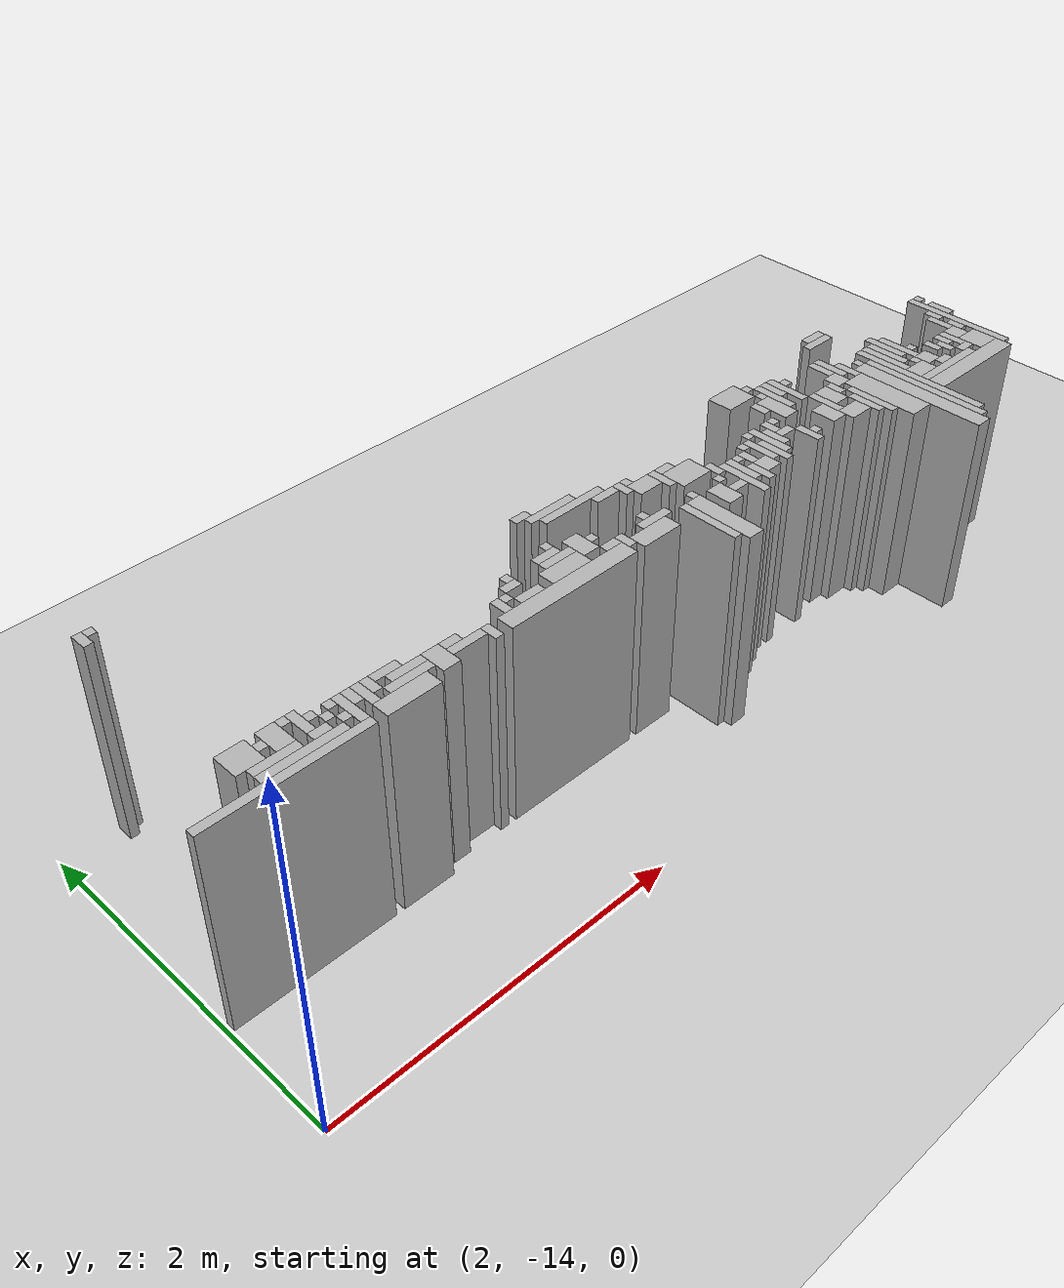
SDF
<sdf version="1.6">
 <world name="d10_floor">
  <include><uri>model://sun</uri></include>
  <include><uri>model://ground_plane</uri></include>
  <model name="d10_walls">
   <static>true</static>
   <link name="w619">
    <pose>6.625 -13.395 0.60 0 0 0</pose>
    <collision name="c"><geometry><box><size>0.100 0.800 1.20</size></box></geometry></collision>
    <visual name="v">
     <geometry><box><size>0.100 0.800 1.20</size></box></geometry>
     <material><ambient>0.6 0.6 0.6 1</ambient><diffuse>0.7 0.7 0.7 1</diffuse></material>
    </visual>
   </link>
   <link name="w627">
    <pose>6.700 -13.370 0.60 0 0 0</pose>
    <collision name="c"><geometry><box><size>0.050 0.750 1.20</size></box></geometry></collision>
    <visual name="v">
     <geometry><box><size>0.050 0.750 1.20</size></box></geometry>
     <material><ambient>0.6 0.6 0.6 1</ambient><diffuse>0.7 0.7 0.7 1</diffuse></material>
    </visual>
   </link>
   <link name="w638">
    <pose>6.750 -13.295 0.60 0 0 0</pose>
    <collision name="c"><geometry><box><size>0.050 0.800 1.20</size></box></geometry></collision>
    <visual name="v">
     <geometry><box><size>0.050 0.800 1.20</size></box></geometry>
     <material><ambient>0.6 0.6 0.6 1</ambient><diffuse>0.7 0.7 0.7 1</diffuse></material>
    </visual>
   </link>
   <link name="w656">
    <pose>5.025 -13.395 0.60 0 0 0</pose>
    <collision name="c"><geometry><box><size>0.100 0.400 1.20</size></box></geometry></collision>
    <visual name="v">
     <geometry><box><size>0.100 0.400 1.20</size></box></geometry>
     <material><ambient>0.6 0.6 0.6 1</ambient><diffuse>0.7 0.7 0.7 1</diffuse></material>
    </visual>
   </link>
   <link name="w661">
    <pose>4.950 -13.370 0.60 0 0 0</pose>
    <collision name="c"><geometry><box><size>0.050 0.350 1.20</size></box></geometry></collision>
    <visual name="v">
     <geometry><box><size>0.050 0.350 1.20</size></box></geometry>
     <material><ambient>0.6 0.6 0.6 1</ambient><diffuse>0.7 0.7 0.7 1</diffuse></material>
    </visual>
   </link>
   <link name="w666">
    <pose>6.500 -13.270 0.60 0 0 0</pose>
    <collision name="c"><geometry><box><size>0.150 0.450 1.20</size></box></geometry></collision>
    <visual name="v">
     <geometry><box><size>0.150 0.450 1.20</size></box></geometry>
     <material><ambient>0.6 0.6 0.6 1</ambient><diffuse>0.7 0.7 0.7 1</diffuse></material>
    </visual>
   </link>
   <link name="w676">
    <pose>7.100 -13.395 0.60 0 0 0</pose>
    <collision name="c"><geometry><box><size>0.650 0.100 1.20</size></box></geometry></collision>
    <visual name="v">
     <geometry><box><size>0.650 0.100 1.20</size></box></geometry>
     <material><ambient>0.6 0.6 0.6 1</ambient><diffuse>0.7 0.7 0.7 1</diffuse></material>
    </visual>
   </link>
   <link name="w683">
    <pose>5.350 -13.245 0.60 0 0 0</pose>
    <collision name="c"><geometry><box><size>0.050 0.300 1.20</size></box></geometry></collision>
    <visual name="v">
     <geometry><box><size>0.050 0.300 1.20</size></box></geometry>
     <material><ambient>0.6 0.6 0.6 1</ambient><diffuse>0.7 0.7 0.7 1</diffuse></material>
    </visual>
   </link>
   <link name="w684">
    <pose>6.400 -13.245 0.60 0 0 0</pose>
    <collision name="c"><geometry><box><size>0.050 0.300 1.20</size></box></geometry></collision>
    <visual name="v">
     <geometry><box><size>0.050 0.300 1.20</size></box></geometry>
     <material><ambient>0.6 0.6 0.6 1</ambient><diffuse>0.7 0.7 0.7 1</diffuse></material>
    </visual>
   </link>
   <link name="w685">
    <pose>7.450 -13.070 0.60 0 0 0</pose>
    <collision name="c"><geometry><box><size>0.050 0.650 1.20</size></box></geometry></collision>
    <visual name="v">
     <geometry><box><size>0.050 0.650 1.20</size></box></geometry>
     <material><ambient>0.6 0.6 0.6 1</ambient><diffuse>0.7 0.7 0.7 1</diffuse></material>
    </visual>
   </link>
   <link name="w691">
    <pose>2.475 -13.320 0.60 0 0 0</pose>
    <collision name="c"><geometry><box><size>0.900 0.050 1.20</size></box></geometry></collision>
    <visual name="v">
     <geometry><box><size>0.900 0.050 1.20</size></box></geometry>
     <material><ambient>0.6 0.6 0.6 1</ambient><diffuse>0.7 0.7 0.7 1</diffuse></material>
    </visual>
   </link>
   <link name="w692">
    <pose>3.125 -13.295 0.60 0 0 0</pose>
    <collision name="c"><geometry><box><size>0.300 0.100 1.20</size></box></geometry></collision>
    <visual name="v">
     <geometry><box><size>0.300 0.100 1.20</size></box></geometry>
     <material><ambient>0.6 0.6 0.6 1</ambient><diffuse>0.7 0.7 0.7 1</diffuse></material>
    </visual>
   </link>
   <link name="w693">
    <pose>5.175 -13.270 0.60 0 0 0</pose>
    <collision name="c"><geometry><box><size>0.100 0.150 1.20</size></box></geometry></collision>
    <visual name="v">
     <geometry><box><size>0.100 0.150 1.20</size></box></geometry>
     <material><ambient>0.6 0.6 0.6 1</ambient><diffuse>0.7 0.7 0.7 1</diffuse></material>
    </visual>
   </link>
   <link name="w694">
    <pose>5.450 -13.270 0.60 0 0 0</pose>
    <collision name="c"><geometry><box><size>0.050 0.150 1.20</size></box></geometry></collision>
    <visual name="v">
     <geometry><box><size>0.050 0.150 1.20</size></box></geometry>
     <material><ambient>0.6 0.6 0.6 1</ambient><diffuse>0.7 0.7 0.7 1</diffuse></material>
    </visual>
   </link>
   <link name="w695">
    <pose>6.350 -13.245 0.60 0 0 0</pose>
    <collision name="c"><geometry><box><size>0.050 0.200 1.20</size></box></geometry></collision>
    <visual name="v">
     <geometry><box><size>0.050 0.200 1.20</size></box></geometry>
     <material><ambient>0.6 0.6 0.6 1</ambient><diffuse>0.7 0.7 0.7 1</diffuse></material>
    </visual>
   </link>
   <link name="w696">
    <pose>7.000 -13.320 0.60 0 0 0</pose>
    <collision name="c"><geometry><box><size>0.450 0.050 1.20</size></box></geometry></collision>
    <visual name="v">
     <geometry><box><size>0.450 0.050 1.20</size></box></geometry>
     <material><ambient>0.6 0.6 0.6 1</ambient><diffuse>0.7 0.7 0.7 1</diffuse></material>
    </visual>
   </link>
   <link name="w697">
    <pose>7.350 -13.270 0.60 0 0 0</pose>
    <collision name="c"><geometry><box><size>0.150 0.150 1.20</size></box></geometry></collision>
    <visual name="v">
     <geometry><box><size>0.150 0.150 1.20</size></box></geometry>
     <material><ambient>0.6 0.6 0.6 1</ambient><diffuse>0.7 0.7 0.7 1</diffuse></material>
    </visual>
   </link>
   <link name="w706">
    <pose>2.600 -13.270 0.60 0 0 0</pose>
    <collision name="c"><geometry><box><size>0.450 0.050 1.20</size></box></geometry></collision>
    <visual name="v">
     <geometry><box><size>0.450 0.050 1.20</size></box></geometry>
     <material><ambient>0.6 0.6 0.6 1</ambient><diffuse>0.7 0.7 0.7 1</diffuse></material>
    </visual>
   </link>
   <link name="w707">
    <pose>2.900 -13.195 0.60 0 0 0</pose>
    <collision name="c"><geometry><box><size>0.050 0.200 1.20</size></box></geometry></collision>
    <visual name="v">
     <geometry><box><size>0.050 0.200 1.20</size></box></geometry>
     <material><ambient>0.6 0.6 0.6 1</ambient><diffuse>0.7 0.7 0.7 1</diffuse></material>
    </visual>
   </link>
   <link name="w708">
    <pose>3.375 -13.220 0.60 0 0 0</pose>
    <collision name="c"><geometry><box><size>0.100 0.150 1.20</size></box></geometry></collision>
    <visual name="v">
     <geometry><box><size>0.100 0.150 1.20</size></box></geometry>
     <material><ambient>0.6 0.6 0.6 1</ambient><diffuse>0.7 0.7 0.7 1</diffuse></material>
    </visual>
   </link>
   <link name="w709">
    <pose>3.650 -13.245 0.60 0 0 0</pose>
    <collision name="c"><geometry><box><size>0.050 0.100 1.20</size></box></geometry></collision>
    <visual name="v">
     <geometry><box><size>0.050 0.100 1.20</size></box></geometry>
     <material><ambient>0.6 0.6 0.6 1</ambient><diffuse>0.7 0.7 0.7 1</diffuse></material>
    </visual>
   </link>
   <link name="w710">
    <pose>4.125 -13.245 0.60 0 0 0</pose>
    <collision name="c"><geometry><box><size>0.800 0.100 1.20</size></box></geometry></collision>
    <visual name="v">
     <geometry><box><size>0.800 0.100 1.20</size></box></geometry>
     <material><ambient>0.6 0.6 0.6 1</ambient><diffuse>0.7 0.7 0.7 1</diffuse></material>
    </visual>
   </link>
   <link name="w711">
    <pose>4.700 -13.245 0.60 0 0 0</pose>
    <collision name="c"><geometry><box><size>0.250 0.100 1.20</size></box></geometry></collision>
    <visual name="v">
     <geometry><box><size>0.250 0.100 1.20</size></box></geometry>
     <material><ambient>0.6 0.6 0.6 1</ambient><diffuse>0.7 0.7 0.7 1</diffuse></material>
    </visual>
   </link>
   <link name="w712">
    <pose>5.275 -13.270 0.60 0 0 0</pose>
    <collision name="c"><geometry><box><size>0.100 0.050 1.20</size></box></geometry></collision>
    <visual name="v">
     <geometry><box><size>0.100 0.050 1.20</size></box></geometry>
     <material><ambient>0.6 0.6 0.6 1</ambient><diffuse>0.7 0.7 0.7 1</diffuse></material>
    </visual>
   </link>
   <link name="w713">
    <pose>5.400 -13.195 0.60 0 0 0</pose>
    <collision name="c"><geometry><box><size>0.050 0.200 1.20</size></box></geometry></collision>
    <visual name="v">
     <geometry><box><size>0.050 0.200 1.20</size></box></geometry>
     <material><ambient>0.6 0.6 0.6 1</ambient><diffuse>0.7 0.7 0.7 1</diffuse></material>
    </visual>
   </link>
   <link name="w714">
    <pose>5.525 -13.245 0.60 0 0 0</pose>
    <collision name="c"><geometry><box><size>0.100 0.100 1.20</size></box></geometry></collision>
    <visual name="v">
     <geometry><box><size>0.100 0.100 1.20</size></box></geometry>
     <material><ambient>0.6 0.6 0.6 1</ambient><diffuse>0.7 0.7 0.7 1</diffuse></material>
    </visual>
   </link>
   <link name="w715">
    <pose>5.650 -13.195 0.60 0 0 0</pose>
    <collision name="c"><geometry><box><size>0.050 0.200 1.20</size></box></geometry></collision>
    <visual name="v">
     <geometry><box><size>0.050 0.200 1.20</size></box></geometry>
     <material><ambient>0.6 0.6 0.6 1</ambient><diffuse>0.7 0.7 0.7 1</diffuse></material>
    </visual>
   </link>
   <link name="w716">
    <pose>5.900 -13.220 0.60 0 0 0</pose>
    <collision name="c"><geometry><box><size>0.050 0.150 1.20</size></box></geometry></collision>
    <visual name="v">
     <geometry><box><size>0.050 0.150 1.20</size></box></geometry>
     <material><ambient>0.6 0.6 0.6 1</ambient><diffuse>0.7 0.7 0.7 1</diffuse></material>
    </visual>
   </link>
   <link name="w717">
    <pose>6.250 -13.245 0.60 0 0 0</pose>
    <collision name="c"><geometry><box><size>0.150 0.100 1.20</size></box></geometry></collision>
    <visual name="v">
     <geometry><box><size>0.150 0.100 1.20</size></box></geometry>
     <material><ambient>0.6 0.6 0.6 1</ambient><diffuse>0.7 0.7 0.7 1</diffuse></material>
    </visual>
   </link>
   <link name="w718">
    <pose>6.850 -13.245 0.60 0 0 0</pose>
    <collision name="c"><geometry><box><size>0.150 0.100 1.20</size></box></geometry></collision>
    <visual name="v">
     <geometry><box><size>0.150 0.100 1.20</size></box></geometry>
     <material><ambient>0.6 0.6 0.6 1</ambient><diffuse>0.7 0.7 0.7 1</diffuse></material>
    </visual>
   </link>
   <link name="w719">
    <pose>7.025 -13.270 0.60 0 0 0</pose>
    <collision name="c"><geometry><box><size>0.100 0.050 1.20</size></box></geometry></collision>
    <visual name="v">
     <geometry><box><size>0.100 0.050 1.20</size></box></geometry>
     <material><ambient>0.6 0.6 0.6 1</ambient><diffuse>0.7 0.7 0.7 1</diffuse></material>
    </visual>
   </link>
   <link name="w720">
    <pose>7.225 -13.270 0.60 0 0 0</pose>
    <collision name="c"><geometry><box><size>0.100 0.050 1.20</size></box></geometry></collision>
    <visual name="v">
     <geometry><box><size>0.100 0.050 1.20</size></box></geometry>
     <material><ambient>0.6 0.6 0.6 1</ambient><diffuse>0.7 0.7 0.7 1</diffuse></material>
    </visual>
   </link>
   <link name="w729">
    <pose>2.500 -13.220 0.60 0 0 0</pose>
    <collision name="c"><geometry><box><size>0.250 0.050 1.20</size></box></geometry></collision>
    <visual name="v">
     <geometry><box><size>0.250 0.050 1.20</size></box></geometry>
     <material><ambient>0.6 0.6 0.6 1</ambient><diffuse>0.7 0.7 0.7 1</diffuse></material>
    </visual>
   </link>
   <link name="w730">
    <pose>2.725 -13.220 0.60 0 0 0</pose>
    <collision name="c"><geometry><box><size>0.100 0.050 1.20</size></box></geometry></collision>
    <visual name="v">
     <geometry><box><size>0.100 0.050 1.20</size></box></geometry>
     <material><ambient>0.6 0.6 0.6 1</ambient><diffuse>0.7 0.7 0.7 1</diffuse></material>
    </visual>
   </link>
   <link name="w731">
    <pose>2.850 -13.220 0.60 0 0 0</pose>
    <collision name="c"><geometry><box><size>0.050 0.050 1.20</size></box></geometry></collision>
    <visual name="v">
     <geometry><box><size>0.050 0.050 1.20</size></box></geometry>
     <material><ambient>0.6 0.6 0.6 1</ambient><diffuse>0.7 0.7 0.7 1</diffuse></material>
    </visual>
   </link>
   <link name="w732">
    <pose>3.000 -13.170 0.60 0 0 0</pose>
    <collision name="c"><geometry><box><size>0.050 0.150 1.20</size></box></geometry></collision>
    <visual name="v">
     <geometry><box><size>0.050 0.150 1.20</size></box></geometry>
     <material><ambient>0.6 0.6 0.6 1</ambient><diffuse>0.7 0.7 0.7 1</diffuse></material>
    </visual>
   </link>
   <link name="w733">
    <pose>3.200 -13.220 0.60 0 0 0</pose>
    <collision name="c"><geometry><box><size>0.250 0.050 1.20</size></box></geometry></collision>
    <visual name="v">
     <geometry><box><size>0.250 0.050 1.20</size></box></geometry>
     <material><ambient>0.6 0.6 0.6 1</ambient><diffuse>0.7 0.7 0.7 1</diffuse></material>
    </visual>
   </link>
   <link name="w734">
    <pose>3.525 -13.220 0.60 0 0 0</pose>
    <collision name="c"><geometry><box><size>0.200 0.050 1.20</size></box></geometry></collision>
    <visual name="v">
     <geometry><box><size>0.200 0.050 1.20</size></box></geometry>
     <material><ambient>0.6 0.6 0.6 1</ambient><diffuse>0.7 0.7 0.7 1</diffuse></material>
    </visual>
   </link>
   <link name="w735">
    <pose>4.550 -13.195 0.60 0 0 0</pose>
    <collision name="c"><geometry><box><size>0.050 0.100 1.20</size></box></geometry></collision>
    <visual name="v">
     <geometry><box><size>0.050 0.100 1.20</size></box></geometry>
     <material><ambient>0.6 0.6 0.6 1</ambient><diffuse>0.7 0.7 0.7 1</diffuse></material>
    </visual>
   </link>
   <link name="w736">
    <pose>5.600 -13.145 0.60 0 0 0</pose>
    <collision name="c"><geometry><box><size>0.050 0.200 1.20</size></box></geometry></collision>
    <visual name="v">
     <geometry><box><size>0.050 0.200 1.20</size></box></geometry>
     <material><ambient>0.6 0.6 0.6 1</ambient><diffuse>0.7 0.7 0.7 1</diffuse></material>
    </visual>
   </link>
   <link name="w737">
    <pose>5.700 -13.120 0.60 0 0 0</pose>
    <collision name="c"><geometry><box><size>0.050 0.250 1.20</size></box></geometry></collision>
    <visual name="v">
     <geometry><box><size>0.050 0.250 1.20</size></box></geometry>
     <material><ambient>0.6 0.6 0.6 1</ambient><diffuse>0.7 0.7 0.7 1</diffuse></material>
    </visual>
   </link>
   <link name="w738">
    <pose>5.950 -13.220 0.60 0 0 0</pose>
    <collision name="c"><geometry><box><size>0.050 0.050 1.20</size></box></geometry></collision>
    <visual name="v">
     <geometry><box><size>0.050 0.050 1.20</size></box></geometry>
     <material><ambient>0.6 0.6 0.6 1</ambient><diffuse>0.7 0.7 0.7 1</diffuse></material>
    </visual>
   </link>
   <link name="w739">
    <pose>6.125 -13.170 0.60 0 0 0</pose>
    <collision name="c"><geometry><box><size>0.100 0.150 1.20</size></box></geometry></collision>
    <visual name="v">
     <geometry><box><size>0.100 0.150 1.20</size></box></geometry>
     <material><ambient>0.6 0.6 0.6 1</ambient><diffuse>0.7 0.7 0.7 1</diffuse></material>
    </visual>
   </link>
   <link name="w740">
    <pose>6.975 -13.195 0.60 0 0 0</pose>
    <collision name="c"><geometry><box><size>0.100 0.100 1.20</size></box></geometry></collision>
    <visual name="v">
     <geometry><box><size>0.100 0.100 1.20</size></box></geometry>
     <material><ambient>0.6 0.6 0.6 1</ambient><diffuse>0.7 0.7 0.7 1</diffuse></material>
    </visual>
   </link>
   <link name="w741">
    <pose>7.150 -13.195 0.60 0 0 0</pose>
    <collision name="c"><geometry><box><size>0.050 0.100 1.20</size></box></geometry></collision>
    <visual name="v">
     <geometry><box><size>0.050 0.100 1.20</size></box></geometry>
     <material><ambient>0.6 0.6 0.6 1</ambient><diffuse>0.7 0.7 0.7 1</diffuse></material>
    </visual>
   </link>
   <link name="w742">
    <pose>7.250 -13.170 0.60 0 0 0</pose>
    <collision name="c"><geometry><box><size>0.050 0.150 1.20</size></box></geometry></collision>
    <visual name="v">
     <geometry><box><size>0.050 0.150 1.20</size></box></geometry>
     <material><ambient>0.6 0.6 0.6 1</ambient><diffuse>0.7 0.7 0.7 1</diffuse></material>
    </visual>
   </link>
   <link name="w761">
    <pose>2.400 -13.120 0.60 0 0 0</pose>
    <collision name="c"><geometry><box><size>0.150 0.150 1.20</size></box></geometry></collision>
    <visual name="v">
     <geometry><box><size>0.150 0.150 1.20</size></box></geometry>
     <material><ambient>0.6 0.6 0.6 1</ambient><diffuse>0.7 0.7 0.7 1</diffuse></material>
    </visual>
   </link>
   <link name="w762">
    <pose>2.575 -13.120 0.60 0 0 0</pose>
    <collision name="c"><geometry><box><size>0.100 0.150 1.20</size></box></geometry></collision>
    <visual name="v">
     <geometry><box><size>0.100 0.150 1.20</size></box></geometry>
     <material><ambient>0.6 0.6 0.6 1</ambient><diffuse>0.7 0.7 0.7 1</diffuse></material>
    </visual>
   </link>
   <link name="w763">
    <pose>2.700 -13.120 0.60 0 0 0</pose>
    <collision name="c"><geometry><box><size>0.050 0.150 1.20</size></box></geometry></collision>
    <visual name="v">
     <geometry><box><size>0.050 0.150 1.20</size></box></geometry>
     <material><ambient>0.6 0.6 0.6 1</ambient><diffuse>0.7 0.7 0.7 1</diffuse></material>
    </visual>
   </link>
   <link name="w764">
    <pose>2.800 -13.170 0.60 0 0 0</pose>
    <collision name="c"><geometry><box><size>0.050 0.050 1.20</size></box></geometry></collision>
    <visual name="v">
     <geometry><box><size>0.050 0.050 1.20</size></box></geometry>
     <material><ambient>0.6 0.6 0.6 1</ambient><diffuse>0.7 0.7 0.7 1</diffuse></material>
    </visual>
   </link>
   <link name="w765">
    <pose>2.950 -13.145 0.60 0 0 0</pose>
    <collision name="c"><geometry><box><size>0.050 0.100 1.20</size></box></geometry></collision>
    <visual name="v">
     <geometry><box><size>0.050 0.100 1.20</size></box></geometry>
     <material><ambient>0.6 0.6 0.6 1</ambient><diffuse>0.7 0.7 0.7 1</diffuse></material>
    </visual>
   </link>
   <link name="w766">
    <pose>3.050 -13.145 0.60 0 0 0</pose>
    <collision name="c"><geometry><box><size>0.050 0.100 1.20</size></box></geometry></collision>
    <visual name="v">
     <geometry><box><size>0.050 0.100 1.20</size></box></geometry>
     <material><ambient>0.6 0.6 0.6 1</ambient><diffuse>0.7 0.7 0.7 1</diffuse></material>
    </visual>
   </link>
   <link name="w767">
    <pose>3.225 -13.170 0.60 0 0 0</pose>
    <collision name="c"><geometry><box><size>0.200 0.050 1.20</size></box></geometry></collision>
    <visual name="v">
     <geometry><box><size>0.200 0.050 1.20</size></box></geometry>
     <material><ambient>0.6 0.6 0.6 1</ambient><diffuse>0.7 0.7 0.7 1</diffuse></material>
    </visual>
   </link>
   <link name="w768">
    <pose>3.475 -13.170 0.60 0 0 0</pose>
    <collision name="c"><geometry><box><size>0.100 0.050 1.20</size></box></geometry></collision>
    <visual name="v">
     <geometry><box><size>0.100 0.050 1.20</size></box></geometry>
     <material><ambient>0.6 0.6 0.6 1</ambient><diffuse>0.7 0.7 0.7 1</diffuse></material>
    </visual>
   </link>
   <link name="w769">
    <pose>3.800 -13.145 0.60 0 0 0</pose>
    <collision name="c"><geometry><box><size>0.050 0.100 1.20</size></box></geometry></collision>
    <visual name="v">
     <geometry><box><size>0.050 0.100 1.20</size></box></geometry>
     <material><ambient>0.6 0.6 0.6 1</ambient><diffuse>0.7 0.7 0.7 1</diffuse></material>
    </visual>
   </link>
   <link name="w770">
    <pose>3.950 -13.170 0.60 0 0 0</pose>
    <collision name="c"><geometry><box><size>0.150 0.050 1.20</size></box></geometry></collision>
    <visual name="v">
     <geometry><box><size>0.150 0.050 1.20</size></box></geometry>
     <material><ambient>0.6 0.6 0.6 1</ambient><diffuse>0.7 0.7 0.7 1</diffuse></material>
    </visual>
   </link>
   <link name="w771">
    <pose>4.200 -13.145 0.60 0 0 0</pose>
    <collision name="c"><geometry><box><size>0.250 0.100 1.20</size></box></geometry></collision>
    <visual name="v">
     <geometry><box><size>0.250 0.100 1.20</size></box></geometry>
     <material><ambient>0.6 0.6 0.6 1</ambient><diffuse>0.7 0.7 0.7 1</diffuse></material>
    </visual>
   </link>
   <link name="w772">
    <pose>4.475 -13.170 0.60 0 0 0</pose>
    <collision name="c"><geometry><box><size>0.100 0.050 1.20</size></box></geometry></collision>
    <visual name="v">
     <geometry><box><size>0.100 0.050 1.20</size></box></geometry>
     <material><ambient>0.6 0.6 0.6 1</ambient><diffuse>0.7 0.7 0.7 1</diffuse></material>
    </visual>
   </link>
   <link name="w773">
    <pose>4.775 -13.170 0.60 0 0 0</pose>
    <collision name="c"><geometry><box><size>0.200 0.050 1.20</size></box></geometry></collision>
    <visual name="v">
     <geometry><box><size>0.200 0.050 1.20</size></box></geometry>
     <material><ambient>0.6 0.6 0.6 1</ambient><diffuse>0.7 0.7 0.7 1</diffuse></material>
    </visual>
   </link>
   <link name="w774">
    <pose>5.050 -13.170 0.60 0 0 0</pose>
    <collision name="c"><geometry><box><size>0.050 0.050 1.20</size></box></geometry></collision>
    <visual name="v">
     <geometry><box><size>0.050 0.050 1.20</size></box></geometry>
     <material><ambient>0.6 0.6 0.6 1</ambient><diffuse>0.7 0.7 0.7 1</diffuse></material>
    </visual>
   </link>
   <link name="w775">
    <pose>5.250 -13.170 0.60 0 0 0</pose>
    <collision name="c"><geometry><box><size>0.050 0.050 1.20</size></box></geometry></collision>
    <visual name="v">
     <geometry><box><size>0.050 0.050 1.20</size></box></geometry>
     <material><ambient>0.6 0.6 0.6 1</ambient><diffuse>0.7 0.7 0.7 1</diffuse></material>
    </visual>
   </link>
   <link name="w776">
    <pose>5.500 -13.145 0.60 0 0 0</pose>
    <collision name="c"><geometry><box><size>0.050 0.100 1.20</size></box></geometry></collision>
    <visual name="v">
     <geometry><box><size>0.050 0.100 1.20</size></box></geometry>
     <material><ambient>0.6 0.6 0.6 1</ambient><diffuse>0.7 0.7 0.7 1</diffuse></material>
    </visual>
   </link>
   <link name="w777">
    <pose>5.750 -13.120 0.60 0 0 0</pose>
    <collision name="c"><geometry><box><size>0.050 0.150 1.20</size></box></geometry></collision>
    <visual name="v">
     <geometry><box><size>0.050 0.150 1.20</size></box></geometry>
     <material><ambient>0.6 0.6 0.6 1</ambient><diffuse>0.7 0.7 0.7 1</diffuse></material>
    </visual>
   </link>
   <link name="w778">
    <pose>6.200 -13.095 0.60 0 0 0</pose>
    <collision name="c"><geometry><box><size>0.050 0.200 1.20</size></box></geometry></collision>
    <visual name="v">
     <geometry><box><size>0.050 0.200 1.20</size></box></geometry>
     <material><ambient>0.6 0.6 0.6 1</ambient><diffuse>0.7 0.7 0.7 1</diffuse></material>
    </visual>
   </link>
   <link name="w779">
    <pose>6.800 -13.045 0.60 0 0 0</pose>
    <collision name="c"><geometry><box><size>0.050 0.300 1.20</size></box></geometry></collision>
    <visual name="v">
     <geometry><box><size>0.050 0.300 1.20</size></box></geometry>
     <material><ambient>0.6 0.6 0.6 1</ambient><diffuse>0.7 0.7 0.7 1</diffuse></material>
    </visual>
   </link>
   <link name="w780">
    <pose>6.900 -13.170 0.60 0 0 0</pose>
    <collision name="c"><geometry><box><size>0.050 0.050 1.20</size></box></geometry></collision>
    <visual name="v">
     <geometry><box><size>0.050 0.050 1.20</size></box></geometry>
     <material><ambient>0.6 0.6 0.6 1</ambient><diffuse>0.7 0.7 0.7 1</diffuse></material>
    </visual>
   </link>
   <link name="w781">
    <pose>7.100 -13.145 0.60 0 0 0</pose>
    <collision name="c"><geometry><box><size>0.050 0.100 1.20</size></box></geometry></collision>
    <visual name="v">
     <geometry><box><size>0.050 0.100 1.20</size></box></geometry>
     <material><ambient>0.6 0.6 0.6 1</ambient><diffuse>0.7 0.7 0.7 1</diffuse></material>
    </visual>
   </link>
   <link name="w782">
    <pose>7.200 -13.145 0.60 0 0 0</pose>
    <collision name="c"><geometry><box><size>0.050 0.100 1.20</size></box></geometry></collision>
    <visual name="v">
     <geometry><box><size>0.050 0.100 1.20</size></box></geometry>
     <material><ambient>0.6 0.6 0.6 1</ambient><diffuse>0.7 0.7 0.7 1</diffuse></material>
    </visual>
   </link>
   <link name="w783">
    <pose>7.325 -13.145 0.60 0 0 0</pose>
    <collision name="c"><geometry><box><size>0.100 0.100 1.20</size></box></geometry></collision>
    <visual name="v">
     <geometry><box><size>0.100 0.100 1.20</size></box></geometry>
     <material><ambient>0.6 0.6 0.6 1</ambient><diffuse>0.7 0.7 0.7 1</diffuse></material>
    </visual>
   </link>
   <link name="w800">
    <pose>2.500 -13.120 0.60 0 0 0</pose>
    <collision name="c"><geometry><box><size>0.050 0.050 1.20</size></box></geometry></collision>
    <visual name="v">
     <geometry><box><size>0.050 0.050 1.20</size></box></geometry>
     <material><ambient>0.6 0.6 0.6 1</ambient><diffuse>0.7 0.7 0.7 1</diffuse></material>
    </visual>
   </link>
   <link name="w801">
    <pose>2.750 -13.120 0.60 0 0 0</pose>
    <collision name="c"><geometry><box><size>0.050 0.050 1.20</size></box></geometry></collision>
    <visual name="v">
     <geometry><box><size>0.050 0.050 1.20</size></box></geometry>
     <material><ambient>0.6 0.6 0.6 1</ambient><diffuse>0.7 0.7 0.7 1</diffuse></material>
    </visual>
   </link>
   <link name="w802">
    <pose>2.850 -13.120 0.60 0 0 0</pose>
    <collision name="c"><geometry><box><size>0.050 0.050 1.20</size></box></geometry></collision>
    <visual name="v">
     <geometry><box><size>0.050 0.050 1.20</size></box></geometry>
     <material><ambient>0.6 0.6 0.6 1</ambient><diffuse>0.7 0.7 0.7 1</diffuse></material>
    </visual>
   </link>
   <link name="w803">
    <pose>3.150 -13.120 0.60 0 0 0</pose>
    <collision name="c"><geometry><box><size>0.150 0.050 1.20</size></box></geometry></collision>
    <visual name="v">
     <geometry><box><size>0.150 0.050 1.20</size></box></geometry>
     <material><ambient>0.6 0.6 0.6 1</ambient><diffuse>0.7 0.7 0.7 1</diffuse></material>
    </visual>
   </link>
   <link name="w804">
    <pose>3.850 -13.120 0.60 0 0 0</pose>
    <collision name="c"><geometry><box><size>0.050 0.050 1.20</size></box></geometry></collision>
    <visual name="v">
     <geometry><box><size>0.050 0.050 1.20</size></box></geometry>
     <material><ambient>0.6 0.6 0.6 1</ambient><diffuse>0.7 0.7 0.7 1</diffuse></material>
    </visual>
   </link>
   <link name="w805">
    <pose>4.375 -13.070 0.60 0 0 0</pose>
    <collision name="c"><geometry><box><size>0.100 0.150 1.20</size></box></geometry></collision>
    <visual name="v">
     <geometry><box><size>0.100 0.150 1.20</size></box></geometry>
     <material><ambient>0.6 0.6 0.6 1</ambient><diffuse>0.7 0.7 0.7 1</diffuse></material>
    </visual>
   </link>
   <link name="w806">
    <pose>4.750 -13.120 0.60 0 0 0</pose>
    <collision name="c"><geometry><box><size>0.050 0.050 1.20</size></box></geometry></collision>
    <visual name="v">
     <geometry><box><size>0.050 0.050 1.20</size></box></geometry>
     <material><ambient>0.6 0.6 0.6 1</ambient><diffuse>0.7 0.7 0.7 1</diffuse></material>
    </visual>
   </link>
   <link name="w807">
    <pose>5.300 -13.095 0.60 0 0 0</pose>
    <collision name="c"><geometry><box><size>0.050 0.100 1.20</size></box></geometry></collision>
    <visual name="v">
     <geometry><box><size>0.050 0.100 1.20</size></box></geometry>
     <material><ambient>0.6 0.6 0.6 1</ambient><diffuse>0.7 0.7 0.7 1</diffuse></material>
    </visual>
   </link>
   <link name="w808">
    <pose>5.450 -13.120 0.60 0 0 0</pose>
    <collision name="c"><geometry><box><size>0.050 0.050 1.20</size></box></geometry></collision>
    <visual name="v">
     <geometry><box><size>0.050 0.050 1.20</size></box></geometry>
     <material><ambient>0.6 0.6 0.6 1</ambient><diffuse>0.7 0.7 0.7 1</diffuse></material>
    </visual>
   </link>
   <link name="w809">
    <pose>5.825 -13.120 0.60 0 0 0</pose>
    <collision name="c"><geometry><box><size>0.100 0.050 1.20</size></box></geometry></collision>
    <visual name="v">
     <geometry><box><size>0.100 0.050 1.20</size></box></geometry>
     <material><ambient>0.6 0.6 0.6 1</ambient><diffuse>0.7 0.7 0.7 1</diffuse></material>
    </visual>
   </link>
   <link name="w810">
    <pose>6.275 -13.070 0.60 0 0 0</pose>
    <collision name="c"><geometry><box><size>0.100 0.150 1.20</size></box></geometry></collision>
    <visual name="v">
     <geometry><box><size>0.100 0.150 1.20</size></box></geometry>
     <material><ambient>0.6 0.6 0.6 1</ambient><diffuse>0.7 0.7 0.7 1</diffuse></material>
    </visual>
   </link>
   <link name="w811">
    <pose>6.850 -13.020 0.60 0 0 0</pose>
    <collision name="c"><geometry><box><size>0.050 0.250 1.20</size></box></geometry></collision>
    <visual name="v">
     <geometry><box><size>0.050 0.250 1.20</size></box></geometry>
     <material><ambient>0.6 0.6 0.6 1</ambient><diffuse>0.7 0.7 0.7 1</diffuse></material>
    </visual>
   </link>
   <link name="w812">
    <pose>6.950 -13.020 0.60 0 0 0</pose>
    <collision name="c"><geometry><box><size>0.050 0.250 1.20</size></box></geometry></collision>
    <visual name="v">
     <geometry><box><size>0.050 0.250 1.20</size></box></geometry>
     <material><ambient>0.6 0.6 0.6 1</ambient><diffuse>0.7 0.7 0.7 1</diffuse></material>
    </visual>
   </link>
   <link name="w813">
    <pose>7.400 -13.095 0.60 0 0 0</pose>
    <collision name="c"><geometry><box><size>0.050 0.100 1.20</size></box></geometry></collision>
    <visual name="v">
     <geometry><box><size>0.050 0.100 1.20</size></box></geometry>
     <material><ambient>0.6 0.6 0.6 1</ambient><diffuse>0.7 0.7 0.7 1</diffuse></material>
    </visual>
   </link>
   <link name="w821">
    <pose>2.650 -13.070 0.60 0 0 0</pose>
    <collision name="c"><geometry><box><size>0.050 0.050 1.20</size></box></geometry></collision>
    <visual name="v">
     <geometry><box><size>0.050 0.050 1.20</size></box></geometry>
     <material><ambient>0.6 0.6 0.6 1</ambient><diffuse>0.7 0.7 0.7 1</diffuse></material>
    </visual>
   </link>
   <link name="w822">
    <pose>3.925 -13.070 0.60 0 0 0</pose>
    <collision name="c"><geometry><box><size>0.100 0.050 1.20</size></box></geometry></collision>
    <visual name="v">
     <geometry><box><size>0.100 0.050 1.20</size></box></geometry>
     <material><ambient>0.6 0.6 0.6 1</ambient><diffuse>0.7 0.7 0.7 1</diffuse></material>
    </visual>
   </link>
   <link name="w823">
    <pose>4.225 -13.070 0.60 0 0 0</pose>
    <collision name="c"><geometry><box><size>0.200 0.050 1.20</size></box></geometry></collision>
    <visual name="v">
     <geometry><box><size>0.200 0.050 1.20</size></box></geometry>
     <material><ambient>0.6 0.6 0.6 1</ambient><diffuse>0.7 0.7 0.7 1</diffuse></material>
    </visual>
   </link>
   <link name="w824">
    <pose>4.450 -13.070 0.60 0 0 0</pose>
    <collision name="c"><geometry><box><size>0.050 0.050 1.20</size></box></geometry></collision>
    <visual name="v">
     <geometry><box><size>0.050 0.050 1.20</size></box></geometry>
     <material><ambient>0.6 0.6 0.6 1</ambient><diffuse>0.7 0.7 0.7 1</diffuse></material>
    </visual>
   </link>
   <link name="w825">
    <pose>5.175 -13.020 0.60 0 0 0</pose>
    <collision name="c"><geometry><box><size>0.200 0.150 1.20</size></box></geometry></collision>
    <visual name="v">
     <geometry><box><size>0.200 0.150 1.20</size></box></geometry>
     <material><ambient>0.6 0.6 0.6 1</ambient><diffuse>0.7 0.7 0.7 1</diffuse></material>
    </visual>
   </link>
   <link name="w826">
    <pose>5.550 -13.070 0.60 0 0 0</pose>
    <collision name="c"><geometry><box><size>0.050 0.050 1.20</size></box></geometry></collision>
    <visual name="v">
     <geometry><box><size>0.050 0.050 1.20</size></box></geometry>
     <material><ambient>0.6 0.6 0.6 1</ambient><diffuse>0.7 0.7 0.7 1</diffuse></material>
    </visual>
   </link>
   <link name="w827">
    <pose>5.800 -13.045 0.60 0 0 0</pose>
    <collision name="c"><geometry><box><size>0.050 0.100 1.20</size></box></geometry></collision>
    <visual name="v">
     <geometry><box><size>0.050 0.100 1.20</size></box></geometry>
     <material><ambient>0.6 0.6 0.6 1</ambient><diffuse>0.7 0.7 0.7 1</diffuse></material>
    </visual>
   </link>
   <link name="w828">
    <pose>6.350 -13.045 0.60 0 0 0</pose>
    <collision name="c"><geometry><box><size>0.050 0.100 1.20</size></box></geometry></collision>
    <visual name="v">
     <geometry><box><size>0.050 0.100 1.20</size></box></geometry>
     <material><ambient>0.6 0.6 0.6 1</ambient><diffuse>0.7 0.7 0.7 1</diffuse></material>
    </visual>
   </link>
   <link name="w829">
    <pose>6.900 -12.970 0.60 0 0 0</pose>
    <collision name="c"><geometry><box><size>0.050 0.250 1.20</size></box></geometry></collision>
    <visual name="v">
     <geometry><box><size>0.050 0.250 1.20</size></box></geometry>
     <material><ambient>0.6 0.6 0.6 1</ambient><diffuse>0.7 0.7 0.7 1</diffuse></material>
    </visual>
   </link>
   <link name="w830">
    <pose>7.000 -13.070 0.60 0 0 0</pose>
    <collision name="c"><geometry><box><size>0.050 0.050 1.20</size></box></geometry></collision>
    <visual name="v">
     <geometry><box><size>0.050 0.050 1.20</size></box></geometry>
     <material><ambient>0.6 0.6 0.6 1</ambient><diffuse>0.7 0.7 0.7 1</diffuse></material>
    </visual>
   </link>
   <link name="w831">
    <pose>7.350 -13.020 0.60 0 0 0</pose>
    <collision name="c"><geometry><box><size>0.050 0.150 1.20</size></box></geometry></collision>
    <visual name="v">
     <geometry><box><size>0.050 0.150 1.20</size></box></geometry>
     <material><ambient>0.6 0.6 0.6 1</ambient><diffuse>0.7 0.7 0.7 1</diffuse></material>
    </visual>
   </link>
   <link name="w836">
    <pose>3.950 -13.020 0.60 0 0 0</pose>
    <collision name="c"><geometry><box><size>0.050 0.050 1.20</size></box></geometry></collision>
    <visual name="v">
     <geometry><box><size>0.050 0.050 1.20</size></box></geometry>
     <material><ambient>0.6 0.6 0.6 1</ambient><diffuse>0.7 0.7 0.7 1</diffuse></material>
    </visual>
   </link>
   <link name="w837">
    <pose>4.200 -13.020 0.60 0 0 0</pose>
    <collision name="c"><geometry><box><size>0.150 0.050 1.20</size></box></geometry></collision>
    <visual name="v">
     <geometry><box><size>0.150 0.050 1.20</size></box></geometry>
     <material><ambient>0.6 0.6 0.6 1</ambient><diffuse>0.7 0.7 0.7 1</diffuse></material>
    </visual>
   </link>
   <link name="w838">
    <pose>5.050 -12.970 0.60 0 0 0</pose>
    <collision name="c"><geometry><box><size>0.050 0.150 1.20</size></box></geometry></collision>
    <visual name="v">
     <geometry><box><size>0.050 0.150 1.20</size></box></geometry>
     <material><ambient>0.6 0.6 0.6 1</ambient><diffuse>0.7 0.7 0.7 1</diffuse></material>
    </visual>
   </link>
   <link name="w839">
    <pose>5.650 -13.020 0.60 0 0 0</pose>
    <collision name="c"><geometry><box><size>0.050 0.050 1.20</size></box></geometry></collision>
    <visual name="v">
     <geometry><box><size>0.050 0.050 1.20</size></box></geometry>
     <material><ambient>0.6 0.6 0.6 1</ambient><diffuse>0.7 0.7 0.7 1</diffuse></material>
    </visual>
   </link>
   <link name="w840">
    <pose>5.850 -13.020 0.60 0 0 0</pose>
    <collision name="c"><geometry><box><size>0.050 0.050 1.20</size></box></geometry></collision>
    <visual name="v">
     <geometry><box><size>0.050 0.050 1.20</size></box></geometry>
     <material><ambient>0.6 0.6 0.6 1</ambient><diffuse>0.7 0.7 0.7 1</diffuse></material>
    </visual>
   </link>
   <link name="w841">
    <pose>5.975 -12.945 0.60 0 0 0</pose>
    <collision name="c"><geometry><box><size>0.100 0.200 1.20</size></box></geometry></collision>
    <visual name="v">
     <geometry><box><size>0.100 0.200 1.20</size></box></geometry>
     <material><ambient>0.6 0.6 0.6 1</ambient><diffuse>0.7 0.7 0.7 1</diffuse></material>
    </visual>
   </link>
   <link name="w842">
    <pose>6.425 -12.995 0.60 0 0 0</pose>
    <collision name="c"><geometry><box><size>0.100 0.100 1.20</size></box></geometry></collision>
    <visual name="v">
     <geometry><box><size>0.100 0.100 1.20</size></box></geometry>
     <material><ambient>0.6 0.6 0.6 1</ambient><diffuse>0.7 0.7 0.7 1</diffuse></material>
    </visual>
   </link>
   <link name="w843">
    <pose>6.550 -12.970 0.60 0 0 0</pose>
    <collision name="c"><geometry><box><size>0.050 0.150 1.20</size></box></geometry></collision>
    <visual name="v">
     <geometry><box><size>0.050 0.150 1.20</size></box></geometry>
     <material><ambient>0.6 0.6 0.6 1</ambient><diffuse>0.7 0.7 0.7 1</diffuse></material>
    </visual>
   </link>
   <link name="w846">
    <pose>4.250 -12.970 0.60 0 0 0</pose>
    <collision name="c"><geometry><box><size>0.050 0.050 1.20</size></box></geometry></collision>
    <visual name="v">
     <geometry><box><size>0.050 0.050 1.20</size></box></geometry>
     <material><ambient>0.6 0.6 0.6 1</ambient><diffuse>0.7 0.7 0.7 1</diffuse></material>
    </visual>
   </link>
   <link name="w847">
    <pose>4.950 -12.945 0.60 0 0 0</pose>
    <collision name="c"><geometry><box><size>0.150 0.100 1.20</size></box></geometry></collision>
    <visual name="v">
     <geometry><box><size>0.150 0.100 1.20</size></box></geometry>
     <material><ambient>0.6 0.6 0.6 1</ambient><diffuse>0.7 0.7 0.7 1</diffuse></material>
    </visual>
   </link>
   <link name="w848">
    <pose>6.050 -12.870 0.60 0 0 0</pose>
    <collision name="c"><geometry><box><size>0.050 0.250 1.20</size></box></geometry></collision>
    <visual name="v">
     <geometry><box><size>0.050 0.250 1.20</size></box></geometry>
     <material><ambient>0.6 0.6 0.6 1</ambient><diffuse>0.7 0.7 0.7 1</diffuse></material>
    </visual>
   </link>
   <link name="w849">
    <pose>6.150 -12.870 0.60 0 0 0</pose>
    <collision name="c"><geometry><box><size>0.050 0.250 1.20</size></box></geometry></collision>
    <visual name="v">
     <geometry><box><size>0.050 0.250 1.20</size></box></geometry>
     <material><ambient>0.6 0.6 0.6 1</ambient><diffuse>0.7 0.7 0.7 1</diffuse></material>
    </visual>
   </link>
   <link name="w850">
    <pose>6.500 -12.895 0.60 0 0 0</pose>
    <collision name="c"><geometry><box><size>0.050 0.200 1.20</size></box></geometry></collision>
    <visual name="v">
     <geometry><box><size>0.050 0.200 1.20</size></box></geometry>
     <material><ambient>0.6 0.6 0.6 1</ambient><diffuse>0.7 0.7 0.7 1</diffuse></material>
    </visual>
   </link>
   <link name="w851">
    <pose>6.650 -12.970 0.60 0 0 0</pose>
    <collision name="c"><geometry><box><size>0.050 0.050 1.20</size></box></geometry></collision>
    <visual name="v">
     <geometry><box><size>0.050 0.050 1.20</size></box></geometry>
     <material><ambient>0.6 0.6 0.6 1</ambient><diffuse>0.7 0.7 0.7 1</diffuse></material>
    </visual>
   </link>
   <link name="w852">
    <pose>7.400 -12.945 0.60 0 0 0</pose>
    <collision name="c"><geometry><box><size>0.050 0.100 1.20</size></box></geometry></collision>
    <visual name="v">
     <geometry><box><size>0.050 0.100 1.20</size></box></geometry>
     <material><ambient>0.6 0.6 0.6 1</ambient><diffuse>0.7 0.7 0.7 1</diffuse></material>
    </visual>
   </link>
   <link name="w853">
    <pose>7.500 -12.920 0.60 0 0 0</pose>
    <collision name="c"><geometry><box><size>0.050 0.150 1.20</size></box></geometry></collision>
    <visual name="v">
     <geometry><box><size>0.050 0.150 1.20</size></box></geometry>
     <material><ambient>0.6 0.6 0.6 1</ambient><diffuse>0.7 0.7 0.7 1</diffuse></material>
    </visual>
   </link>
   <link name="w858">
    <pose>4.850 -12.895 0.60 0 0 0</pose>
    <collision name="c"><geometry><box><size>0.050 0.100 1.20</size></box></geometry></collision>
    <visual name="v">
     <geometry><box><size>0.050 0.100 1.20</size></box></geometry>
     <material><ambient>0.6 0.6 0.6 1</ambient><diffuse>0.7 0.7 0.7 1</diffuse></material>
    </visual>
   </link>
   <link name="w859">
    <pose>5.125 -12.920 0.60 0 0 0</pose>
    <collision name="c"><geometry><box><size>0.100 0.050 1.20</size></box></geometry></collision>
    <visual name="v">
     <geometry><box><size>0.100 0.050 1.20</size></box></geometry>
     <material><ambient>0.6 0.6 0.6 1</ambient><diffuse>0.7 0.7 0.7 1</diffuse></material>
    </visual>
   </link>
   <link name="w860">
    <pose>5.900 -12.895 0.60 0 0 0</pose>
    <collision name="c"><geometry><box><size>0.050 0.100 1.20</size></box></geometry></collision>
    <visual name="v">
     <geometry><box><size>0.050 0.100 1.20</size></box></geometry>
     <material><ambient>0.6 0.6 0.6 1</ambient><diffuse>0.7 0.7 0.7 1</diffuse></material>
    </visual>
   </link>
   <link name="w861">
    <pose>6.450 -12.870 0.60 0 0 0</pose>
    <collision name="c"><geometry><box><size>0.050 0.150 1.20</size></box></geometry></collision>
    <visual name="v">
     <geometry><box><size>0.050 0.150 1.20</size></box></geometry>
     <material><ambient>0.6 0.6 0.6 1</ambient><diffuse>0.7 0.7 0.7 1</diffuse></material>
    </visual>
   </link>
   <link name="w865">
    <pose>4.750 -12.870 0.60 0 0 0</pose>
    <collision name="c"><geometry><box><size>0.150 0.050 1.20</size></box></geometry></collision>
    <visual name="v">
     <geometry><box><size>0.150 0.050 1.20</size></box></geometry>
     <material><ambient>0.6 0.6 0.6 1</ambient><diffuse>0.7 0.7 0.7 1</diffuse></material>
    </visual>
   </link>
   <link name="w866">
    <pose>4.900 -12.870 0.60 0 0 0</pose>
    <collision name="c"><geometry><box><size>0.050 0.050 1.20</size></box></geometry></collision>
    <visual name="v">
     <geometry><box><size>0.050 0.050 1.20</size></box></geometry>
     <material><ambient>0.6 0.6 0.6 1</ambient><diffuse>0.7 0.7 0.7 1</diffuse></material>
    </visual>
   </link>
   <link name="w867">
    <pose>6.100 -12.820 0.60 0 0 0</pose>
    <collision name="c"><geometry><box><size>0.050 0.150 1.20</size></box></geometry></collision>
    <visual name="v">
     <geometry><box><size>0.050 0.150 1.20</size></box></geometry>
     <material><ambient>0.6 0.6 0.6 1</ambient><diffuse>0.7 0.7 0.7 1</diffuse></material>
    </visual>
   </link>
   <link name="w871">
    <pose>4.575 -12.820 0.60 0 0 0</pose>
    <collision name="c"><geometry><box><size>0.400 0.050 1.20</size></box></geometry></collision>
    <visual name="v">
     <geometry><box><size>0.400 0.050 1.20</size></box></geometry>
     <material><ambient>0.6 0.6 0.6 1</ambient><diffuse>0.7 0.7 0.7 1</diffuse></material>
    </visual>
   </link>
   <link name="w872">
    <pose>6.000 -12.820 0.60 0 0 0</pose>
    <collision name="c"><geometry><box><size>0.050 0.050 1.20</size></box></geometry></collision>
    <visual name="v">
     <geometry><box><size>0.050 0.050 1.20</size></box></geometry>
     <material><ambient>0.6 0.6 0.6 1</ambient><diffuse>0.7 0.7 0.7 1</diffuse></material>
    </visual>
   </link>
   <link name="w873">
    <pose>6.200 -12.820 0.60 0 0 0</pose>
    <collision name="c"><geometry><box><size>0.050 0.050 1.20</size></box></geometry></collision>
    <visual name="v">
     <geometry><box><size>0.050 0.050 1.20</size></box></geometry>
     <material><ambient>0.6 0.6 0.6 1</ambient><diffuse>0.7 0.7 0.7 1</diffuse></material>
    </visual>
   </link>
   <link name="w875">
    <pose>4.475 -12.770 0.60 0 0 0</pose>
    <collision name="c"><geometry><box><size>0.300 0.050 1.20</size></box></geometry></collision>
    <visual name="v">
     <geometry><box><size>0.300 0.050 1.20</size></box></geometry>
     <material><ambient>0.6 0.6 0.6 1</ambient><diffuse>0.7 0.7 0.7 1</diffuse></material>
    </visual>
   </link>
   <link name="w876">
    <pose>5.875 -12.720 0.60 0 0 0</pose>
    <collision name="c"><geometry><box><size>0.200 0.150 1.20</size></box></geometry></collision>
    <visual name="v">
     <geometry><box><size>0.200 0.150 1.20</size></box></geometry>
     <material><ambient>0.6 0.6 0.6 1</ambient><diffuse>0.7 0.7 0.7 1</diffuse></material>
    </visual>
   </link>
   <link name="w877">
    <pose>7.500 -12.770 0.60 0 0 0</pose>
    <collision name="c"><geometry><box><size>0.050 0.050 1.20</size></box></geometry></collision>
    <visual name="v">
     <geometry><box><size>0.050 0.050 1.20</size></box></geometry>
     <material><ambient>0.6 0.6 0.6 1</ambient><diffuse>0.7 0.7 0.7 1</diffuse></material>
    </visual>
   </link>
   <link name="w879">
    <pose>4.325 -12.720 0.60 0 0 0</pose>
    <collision name="c"><geometry><box><size>0.100 0.050 1.20</size></box></geometry></collision>
    <visual name="v">
     <geometry><box><size>0.100 0.050 1.20</size></box></geometry>
     <material><ambient>0.6 0.6 0.6 1</ambient><diffuse>0.7 0.7 0.7 1</diffuse></material>
    </visual>
   </link>
   <link name="w880">
    <pose>6.000 -12.720 0.60 0 0 0</pose>
    <collision name="c"><geometry><box><size>0.050 0.050 1.20</size></box></geometry></collision>
    <visual name="v">
     <geometry><box><size>0.050 0.050 1.20</size></box></geometry>
     <material><ambient>0.6 0.6 0.6 1</ambient><diffuse>0.7 0.7 0.7 1</diffuse></material>
    </visual>
   </link>
   <link name="w884">
    <pose>6.675 -12.670 0.60 0 0 0</pose>
    <collision name="c"><geometry><box><size>0.200 0.050 1.20</size></box></geometry></collision>
    <visual name="v">
     <geometry><box><size>0.200 0.050 1.20</size></box></geometry>
     <material><ambient>0.6 0.6 0.6 1</ambient><diffuse>0.7 0.7 0.7 1</diffuse></material>
    </visual>
   </link>
   <link name="w886">
    <pose>6.700 -12.620 0.60 0 0 0</pose>
    <collision name="c"><geometry><box><size>0.150 0.050 1.20</size></box></geometry></collision>
    <visual name="v">
     <geometry><box><size>0.150 0.050 1.20</size></box></geometry>
     <material><ambient>0.6 0.6 0.6 1</ambient><diffuse>0.7 0.7 0.7 1</diffuse></material>
    </visual>
   </link>
   <link name="w912">
    <pose>2.350 -12.045 0.60 0 0 0</pose>
    <collision name="c"><geometry><box><size>0.050 0.100 1.20</size></box></geometry></collision>
    <visual name="v">
     <geometry><box><size>0.050 0.100 1.20</size></box></geometry>
     <material><ambient>0.6 0.6 0.6 1</ambient><diffuse>0.7 0.7 0.7 1</diffuse></material>
    </visual>
   </link>
   <link name="w917">
    <pose>2.400 -12.020 0.60 0 0 0</pose>
    <collision name="c"><geometry><box><size>0.050 0.050 1.20</size></box></geometry></collision>
    <visual name="v">
     <geometry><box><size>0.050 0.050 1.20</size></box></geometry>
     <material><ambient>0.6 0.6 0.6 1</ambient><diffuse>0.7 0.7 0.7 1</diffuse></material>
    </visual>
   </link>
  </model>
 </world>
</sdf>
